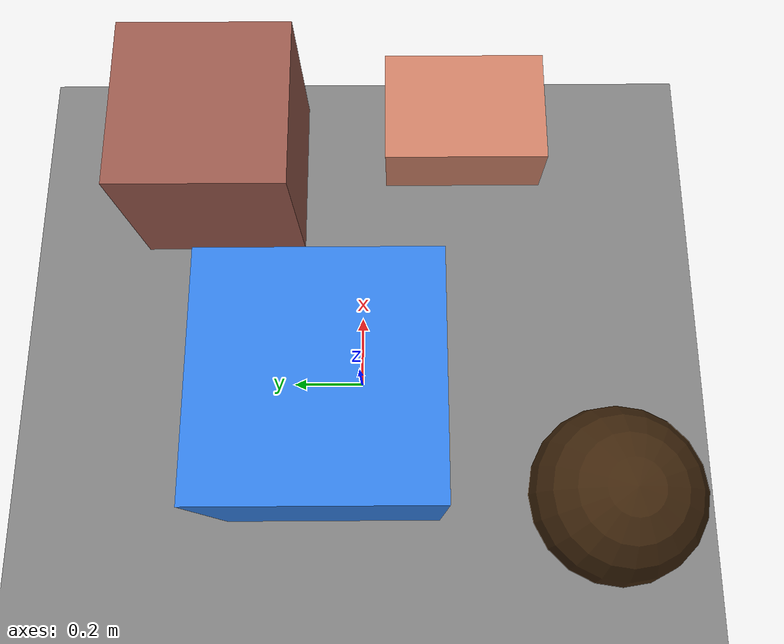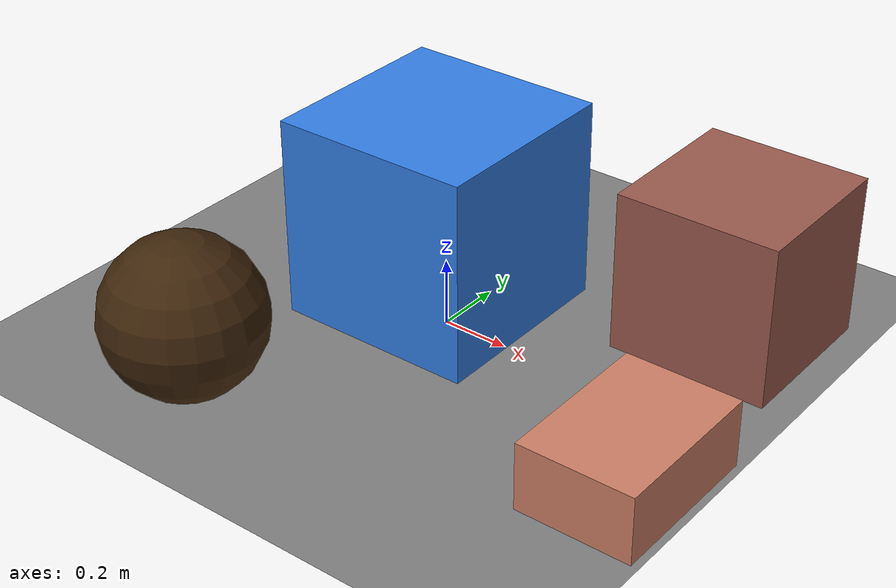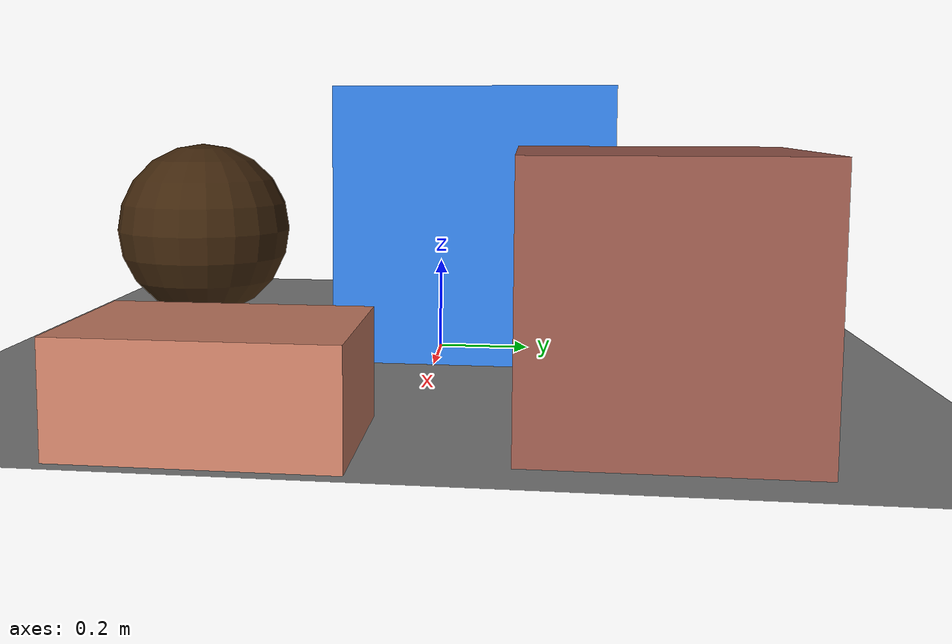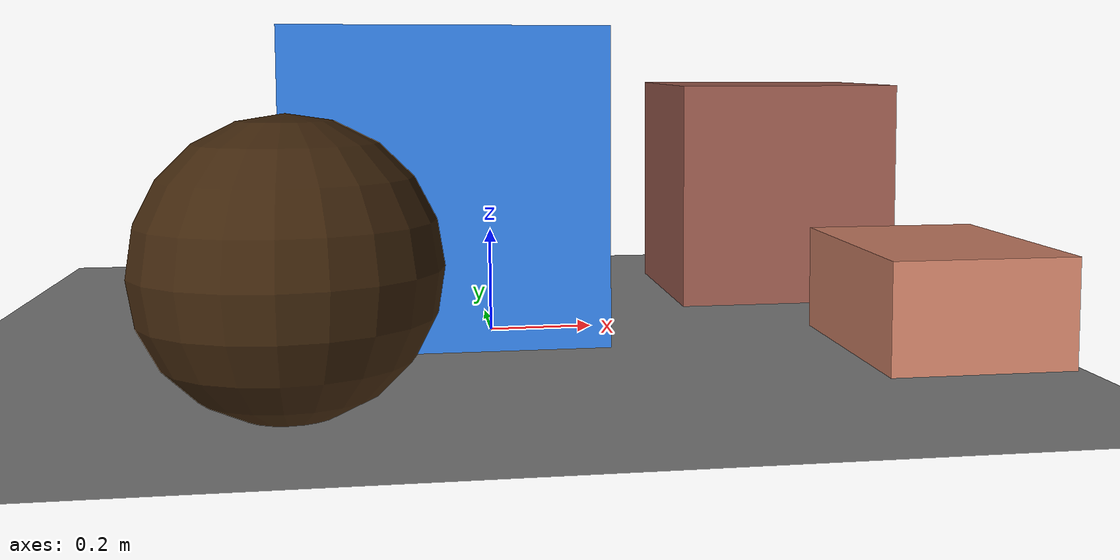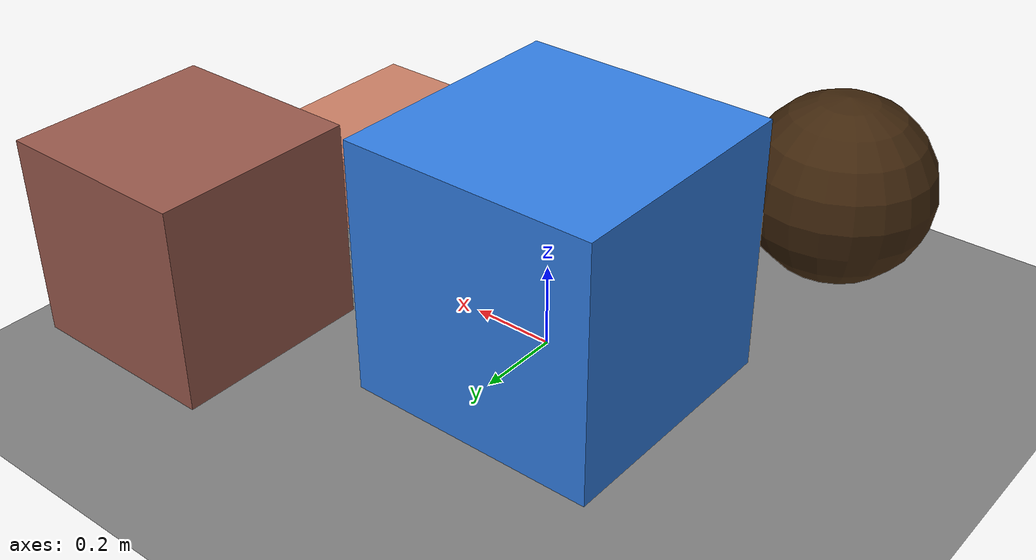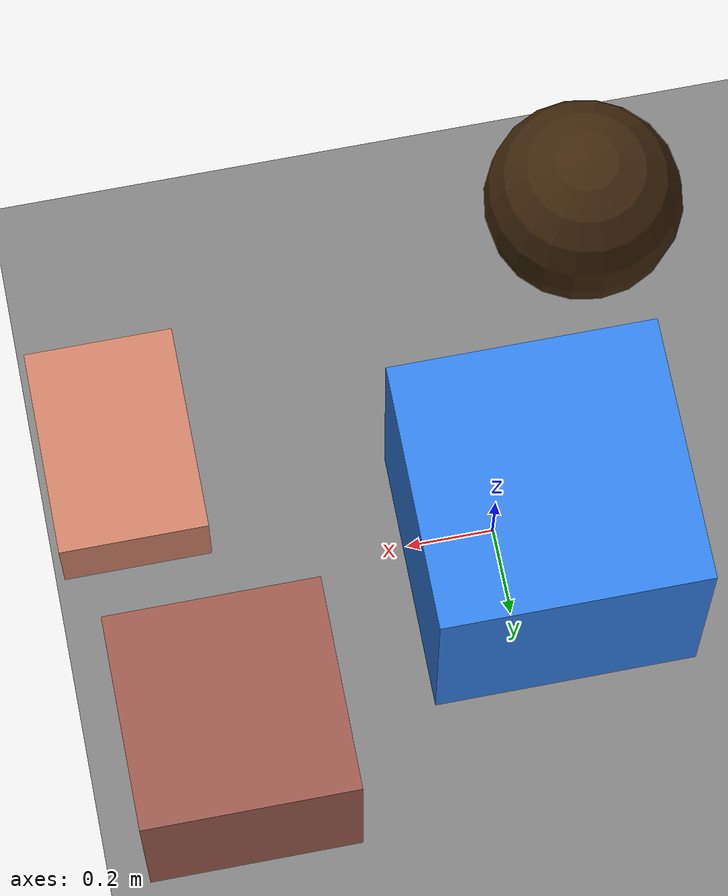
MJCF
<mujoco>
   <asset>
<texture type="skybox" builtin="gradient" rgb1="1.0 0.1 0.2" rgb2="0.8 0.8 1.0" width="256" height="256"/>
<texture name="checker_0" builtin="checker" type="2d" rgb1="0.0 0.2 0.1" rgb2="0.5 0.1 0.0" width="200" height="200"/>
<texture name="flat_1" builtin="flat" rgb1="0.2 0.5 0.9" rgb2="0.2 0.5 0.9"  width="200" height="200"/>
<texture name="gradient_2" builtin="gradient" rgb1="0.9 0.8 0.5" rgb2="0.7 0.2 0.3" width="200" height="200"/>
<texture name="checker_3" builtin="checker" type="2d" rgb1="0.4 0.4 0.3" rgb2="0.8 0.3 0.3" width="200" height="200"/><material name="checker_0_mat" reflectance="0" texrepeat="6 6" texture="checker_0" texuniform="false" />
<material name="flat_1_mat" reflectance="0" texture="flat_1" texuniform="true"/>
<material name="gradient_2_mat" reflectance="0" texture="gradient_2" texuniform="true"/>
<material name="checker_3_mat" reflectance="0" texrepeat="2 2" texture="checker_3" texuniform="false" />
   </asset>

   <worldbody>
      <light diffuse=".9 .9 .9" pos="0 0 3" dir="0 0 -1"/>
     <geom type="plane" size="1 1 0.1" rgba="0.5 0.5 0.5 1"/>
<geom type="sphere" pos="-0.34 -0.67 0.23" size="0.23 0.23 0.23" material="checker_0_mat" />
<geom type="box" pos="-0.09 0.08 0.3" size="0.3 0.3 0.3" material="flat_1_mat" />
<geom type="box" pos="0.81 -0.31 0.1" size="0.17 0.24 0.1" material="gradient_2_mat" />
<geom type="box" pos="0.67 0.42 0.24" size="0.24 0.24 0.24" material="checker_3_mat" /><camera euler="60 0 180" fovy="60" name="camera_a" pos="0 -1.5 1"></camera>   </worldbody>
</mujoco>
